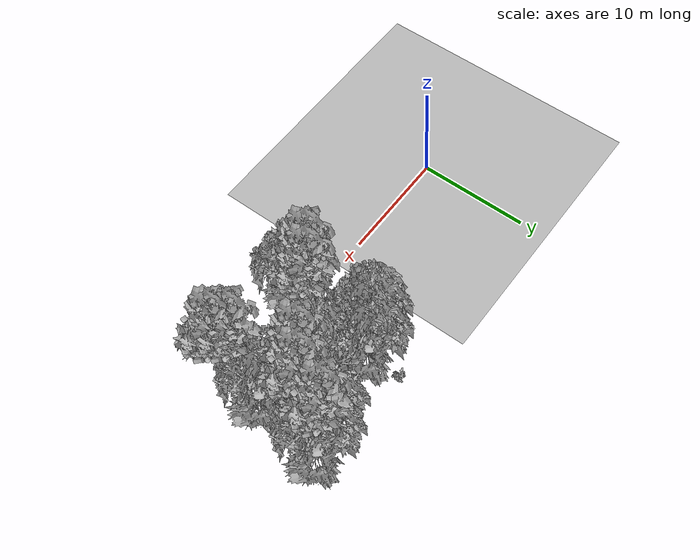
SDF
<sdf version="1.7">
 <world name="default">
  <model name="ground_plane">
   <static>1</static>
   <link name="link">
    <collision name="collision">
     <pose>-50 0 0 0 -0 0</pose>
     <geometry><plane><normal>0 0 1</normal><size>80 80</size></plane></geometry>
     <surface><contact><ode><min_depth>0.01</min_depth><max_vel>0</max_vel></ode></contact></surface>
    </collision>
    <visual name="grass">
     <cast_shadows>0</cast_shadows>
     <geometry>
      <mesh>
       <scale>0.46714285714285714 0.46714285714285714 0.1</scale>
       <uri>file://grass_plane/meshes/grass_plane.dae</uri>
      </mesh>
     </geometry>
    </visual>
   </link>
  </model>
  <model name="Tree 12">
   <static>1</static>
   <pose>18.471832426741315 2.389748799713736 0 1.57079 -0 0</pose>
   <link name="link">
    <collision name="collision">
     <geometry><mesh><scale>3.5 5 3.5</scale><uri>model://tree_9/meshes/tree_9.obj</uri></mesh></geometry>
    </collision>
    <visual name="visual">
     <geometry><mesh><scale>3.5 5 3.5</scale><uri>model://tree_9/meshes/tree_9.obj</uri></mesh></geometry>
    </visual>
   </link>
  </model>
  <model name="Tree 26">
   <static>1</static>
   <pose>17.845759047053185 7.468501675813918 0 1.57079 -0 0</pose>
   <link name="link">
    <collision name="collision">
     <geometry><mesh><scale>3.5 5 3.5</scale><uri>model://tree_2/meshes/tree_2.obj</uri></mesh></geometry>
    </collision>
    <visual name="visual">
     <geometry><mesh><scale>3.5 5 3.5</scale><uri>model://tree_2/meshes/tree_2.obj</uri></mesh></geometry>
    </visual>
   </link>
  </model>
  <model name="Tree 34">
   <static>1</static>
   <pose>27.1355435834421 1.2390537901242737 0 1.57079 -0 0</pose>
   <link name="link">
    <collision name="collision">
     <geometry><mesh><scale>3.5 5 3.5</scale><uri>model://tree_9/meshes/tree_9.obj</uri></mesh></geometry>
    </collision>
    <visual name="visual">
     <geometry><mesh><scale>3.5 5 3.5</scale><uri>model://tree_9/meshes/tree_9.obj</uri></mesh></geometry>
    </visual>
   </link>
  </model>
  <model name="Tree 36">
   <static>1</static>
   <pose>24.55281254851389 6.53174188876779 0 1.57079 -0 0</pose>
   <link name="link">
    <collision name="collision">
     <geometry><mesh><scale>3.5 5 3.5</scale><uri>model://tree_9/meshes/tree_9.obj</uri></mesh></geometry>
    </collision>
    <visual name="visual">
     <geometry><mesh><scale>3.5 5 3.5</scale><uri>model://tree_9/meshes/tree_9.obj</uri></mesh></geometry>
    </visual>
   </link>
  </model>
  <model name="Tree 46">
   <static>1</static>
   <pose>27.4383515536545 10.445893047082691 0 1.57079 -0 0</pose>
   <link name="link">
    <collision name="collision">
     <geometry><mesh><scale>3.5 5 3.5</scale><uri>model://tree_2/meshes/tree_2.obj</uri></mesh></geometry>
    </collision>
    <visual name="visual">
     <geometry><mesh><scale>3.5 5 3.5</scale><uri>model://tree_2/meshes/tree_2.obj</uri></mesh></geometry>
    </visual>
   </link>
  </model>
  <model name="Tree 234">
   <static>1</static>
   <pose>26.022753068301142 7.774251925416223 0 1.57079 -0 0</pose>
   <link name="link">
    <collision name="collision">
     <geometry><mesh><scale>3.5 5 3.5</scale><uri>model://tree_9/meshes/tree_9.obj</uri></mesh></geometry>
    </collision>
    <visual name="visual">
     <geometry><mesh><scale>3.5 5 3.5</scale><uri>model://tree_9/meshes/tree_9.obj</uri></mesh></geometry>
    </visual>
   </link>
  </model>
  <model name="Tree 263">
   <static>1</static>
   <pose>17.99567061809838 0.5909918588248004 0 1.57079 -0 0</pose>
   <link name="link">
    <collision name="collision">
     <geometry><mesh><scale>3.5 5 3.5</scale><uri>model://tree_2/meshes/tree_2.obj</uri></mesh></geometry>
    </collision>
    <visual name="visual">
     <geometry><mesh><scale>3.5 5 3.5</scale><uri>model://tree_2/meshes/tree_2.obj</uri></mesh></geometry>
    </visual>
   </link>
  </model>
  <model name="Tree 265">
   <static>1</static>
   <pose>19.335061146119457 8.62494423089808 0 1.57079 -0 0</pose>
   <link name="link">
    <collision name="collision">
     <geometry><mesh><scale>3.5 5 3.5</scale><uri>model://tree_2/meshes/tree_2.obj</uri></mesh></geometry>
    </collision>
    <visual name="visual">
     <geometry><mesh><scale>3.5 5 3.5</scale><uri>model://tree_2/meshes/tree_2.obj</uri></mesh></geometry>
    </visual>
   </link>
  </model>
  <model name="Tree 271">
   <static>1</static>
   <pose>26.98129931749115 10.474044166524237 0 1.57079 -0 0</pose>
   <link name="link">
    <collision name="collision">
     <geometry><mesh><scale>3.5 5 3.5</scale><uri>model://tree_9/meshes/tree_9.obj</uri></mesh></geometry>
    </collision>
    <visual name="visual">
     <geometry><mesh><scale>3.5 5 3.5</scale><uri>model://tree_9/meshes/tree_9.obj</uri></mesh></geometry>
    </visual>
   </link>
  </model>
  <model name="Tree 414">
   <static>1</static>
   <pose>19.564371542258954 3.288713831018491 0 1.57079 -0 0</pose>
   <link name="link">
    <collision name="collision">
     <geometry><mesh><scale>3.5 5 3.5</scale><uri>model://tree_9/meshes/tree_9.obj</uri></mesh></geometry>
    </collision>
    <visual name="visual">
     <geometry><mesh><scale>3.5 5 3.5</scale><uri>model://tree_9/meshes/tree_9.obj</uri></mesh></geometry>
    </visual>
   </link>
  </model>
  <model name="Tree 575">
   <static>1</static>
   <pose>26.42289653492726 2.171597321089429 0 1.57079 -0 0</pose>
   <link name="link">
    <collision name="collision">
     <geometry><mesh><scale>3.5 5 3.5</scale><uri>model://tree_9/meshes/tree_9.obj</uri></mesh></geometry>
    </collision>
    <visual name="visual">
     <geometry><mesh><scale>3.5 5 3.5</scale><uri>model://tree_9/meshes/tree_9.obj</uri></mesh></geometry>
    </visual>
   </link>
  </model>
  <model name="Tree 595">
   <static>1</static>
   <pose>26.576134641398355 4.609108974393045 0 1.57079 -0 0</pose>
   <link name="link">
    <collision name="collision">
     <geometry><mesh><scale>3.5 5 3.5</scale><uri>model://tree_2/meshes/tree_2.obj</uri></mesh></geometry>
    </collision>
    <visual name="visual">
     <geometry><mesh><scale>3.5 5 3.5</scale><uri>model://tree_2/meshes/tree_2.obj</uri></mesh></geometry>
    </visual>
   </link>
  </model>
  <model name="Tree 606">
   <static>1</static>
   <pose>25.533576934630105 9.29797132085411 0 1.57079 -0 0</pose>
   <link name="link">
    <collision name="collision">
     <geometry><mesh><scale>3.5 5 3.5</scale><uri>model://tree_2/meshes/tree_2.obj</uri></mesh></geometry>
    </collision>
    <visual name="visual">
     <geometry><mesh><scale>3.5 5 3.5</scale><uri>model://tree_2/meshes/tree_2.obj</uri></mesh></geometry>
    </visual>
   </link>
  </model>
  <model name="Tree 630">
   <static>1</static>
   <pose>21.88162886946445 5.793716733170918 0 1.57079 -0 0</pose>
   <link name="link">
    <collision name="collision">
     <geometry><mesh><scale>3.5 5 3.5</scale><uri>model://tree_2/meshes/tree_2.obj</uri></mesh></geometry>
    </collision>
    <visual name="visual">
     <geometry><mesh><scale>3.5 5 3.5</scale><uri>model://tree_2/meshes/tree_2.obj</uri></mesh></geometry>
    </visual>
   </link>
  </model>
  <model name="Bush 15">
   <static>1</static>
   <pose>22.631125195688725 9.41194051077354 0 1.57079 -0 0</pose>
   <link name="link">
    <collision name="collision">
     <geometry><mesh><scale>2 2 2</scale><uri>model://bush_0/meshes/bush_0.obj</uri></mesh></geometry>
     <surface><contact><collide_without_contact>false</collide_without_contact></contact></surface>
    </collision>
    <visual name="visual">
     <geometry><mesh><scale>2 2 2</scale><uri>model://bush_0/meshes/bush_0.obj</uri></mesh></geometry>
    </visual>
   </link>
  </model>
  <model name="Bush 138">
   <static>1</static>
   <pose>26.502909118826892 1.0989753508696083 0 1.57079 -0 0</pose>
   <link name="link">
    <collision name="collision">
     <geometry><mesh><scale>2 2 2</scale><uri>model://bush_5/meshes/bush_5.obj</uri></mesh></geometry>
     <surface><contact><collide_without_contact>false</collide_without_contact></contact></surface>
    </collision>
    <visual name="visual">
     <geometry><mesh><scale>2 2 2</scale><uri>model://bush_5/meshes/bush_5.obj</uri></mesh></geometry>
    </visual>
   </link>
  </model>
  <model name="Bush 176">
   <static>1</static>
   <pose>19.991644947253867 7.12836802842596 0 1.57079 -0 0</pose>
   <link name="link">
    <collision name="collision">
     <geometry><mesh><scale>2 2 2</scale><uri>model://bush_2/meshes/bush_2.obj</uri></mesh></geometry>
     <surface><contact><collide_without_contact>false</collide_without_contact></contact></surface>
    </collision>
    <visual name="visual">
     <geometry><mesh><scale>2 2 2</scale><uri>model://bush_2/meshes/bush_2.obj</uri></mesh></geometry>
    </visual>
   </link>
  </model>
  <model name="Bush 194">
   <static>1</static>
   <pose>25.933810893349914 3.020542362986106 0 1.57079 -0 0</pose>
   <link name="link">
    <collision name="collision">
     <geometry><mesh><scale>2 2 2</scale><uri>model://bush_2/meshes/bush_2.obj</uri></mesh></geometry>
     <surface><contact><collide_without_contact>false</collide_without_contact></contact></surface>
    </collision>
    <visual name="visual">
     <geometry><mesh><scale>2 2 2</scale><uri>model://bush_2/meshes/bush_2.obj</uri></mesh></geometry>
    </visual>
   </link>
  </model>
  <model name="Bush 197">
   <static>1</static>
   <pose>20.200407836686203 0.000313918776527089 0 1.57079 -0 0</pose>
   <link name="link">
    <collision name="collision">
     <geometry><mesh><scale>2 2 2</scale><uri>model://bush_4/meshes/bush_4.obj</uri></mesh></geometry>
     <surface><contact><collide_without_contact>false</collide_without_contact></contact></surface>
    </collision>
    <visual name="visual">
     <geometry><mesh><scale>2 2 2</scale><uri>model://bush_4/meshes/bush_4.obj</uri></mesh></geometry>
    </visual>
   </link>
  </model>
  <model name="Bush 369">
   <static>1</static>
   <pose>17.84161989199692 10.038871340576712 0 1.57079 -0 0</pose>
   <link name="link">
    <collision name="collision">
     <geometry><mesh><scale>2 2 2</scale><uri>model://bush_2/meshes/bush_2.obj</uri></mesh></geometry>
     <surface><contact><collide_without_contact>false</collide_without_contact></contact></surface>
    </collision>
    <visual name="visual">
     <geometry><mesh><scale>2 2 2</scale><uri>model://bush_2/meshes/bush_2.obj</uri></mesh></geometry>
    </visual>
   </link>
  </model>
  <model name="Bush 395">
   <static>1</static>
   <pose>23.630271729500187 4.5917511688042225 0 1.57079 -0 0</pose>
   <link name="link">
    <collision name="collision">
     <geometry><mesh><scale>2 2 2</scale><uri>model://bush_2/meshes/bush_2.obj</uri></mesh></geometry>
     <surface><contact><collide_without_contact>false</collide_without_contact></contact></surface>
    </collision>
    <visual name="visual">
     <geometry><mesh><scale>2 2 2</scale><uri>model://bush_2/meshes/bush_2.obj</uri></mesh></geometry>
    </visual>
   </link>
  </model>
  <model name="Bush 465">
   <static>1</static>
   <pose>23.781366979505037 4.49944524370391 0 1.57079 -0 0</pose>
   <link name="link">
    <collision name="collision">
     <geometry><mesh><scale>2 2 2</scale><uri>model://bush_4/meshes/bush_4.obj</uri></mesh></geometry>
     <surface><contact><collide_without_contact>false</collide_without_contact></contact></surface>
    </collision>
    <visual name="visual">
     <geometry><mesh><scale>2 2 2</scale><uri>model://bush_4/meshes/bush_4.obj</uri></mesh></geometry>
    </visual>
   </link>
  </model>
  <model name="Bush 601">
   <static>1</static>
   <pose>26.50572322391112 9.46176529460277 0 1.57079 -0 0</pose>
   <link name="link">
    <collision name="collision">
     <geometry><mesh><scale>2 2 2</scale><uri>model://bush_2/meshes/bush_2.obj</uri></mesh></geometry>
     <surface><contact><collide_without_contact>false</collide_without_contact></contact></surface>
    </collision>
    <visual name="visual">
     <geometry><mesh><scale>2 2 2</scale><uri>model://bush_2/meshes/bush_2.obj</uri></mesh></geometry>
    </visual>
   </link>
  </model>
 </world>
</sdf>
